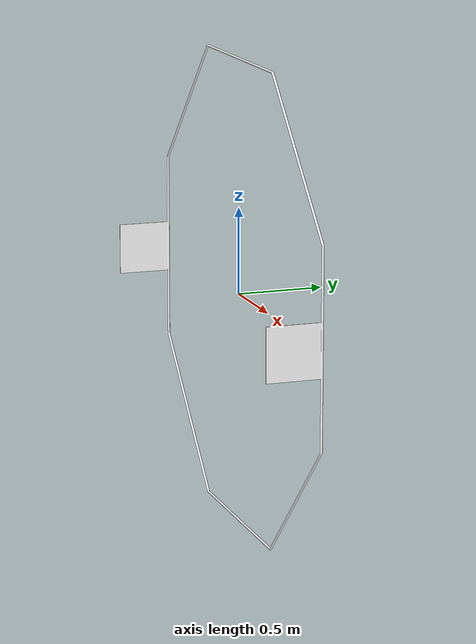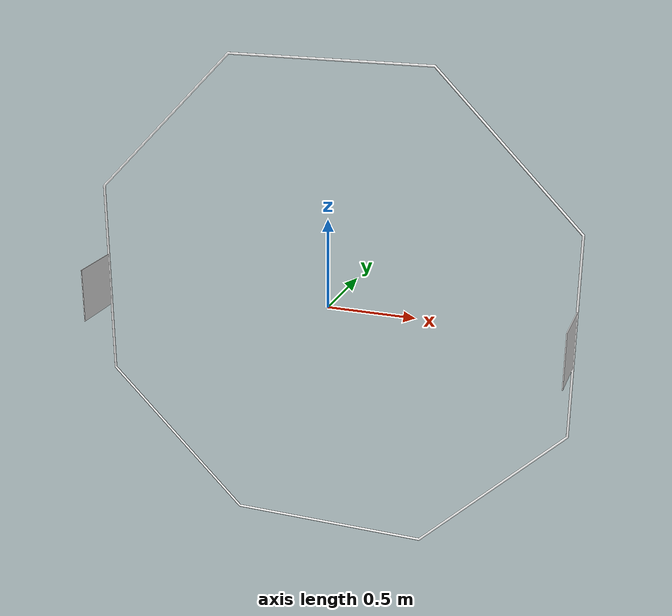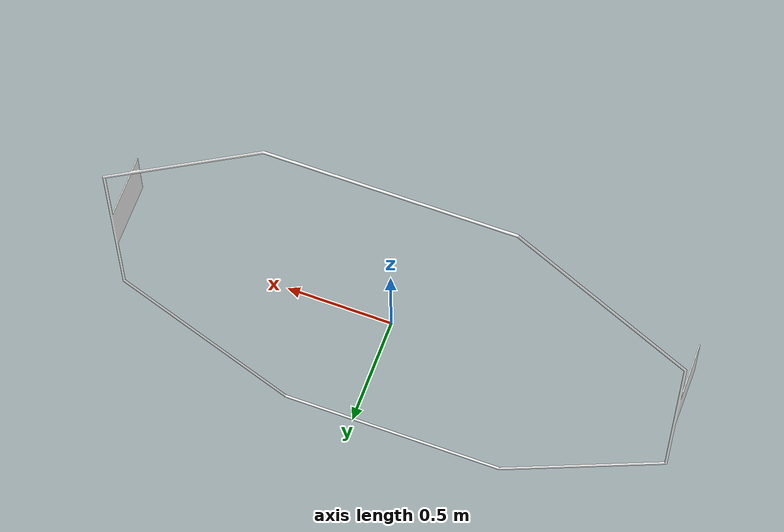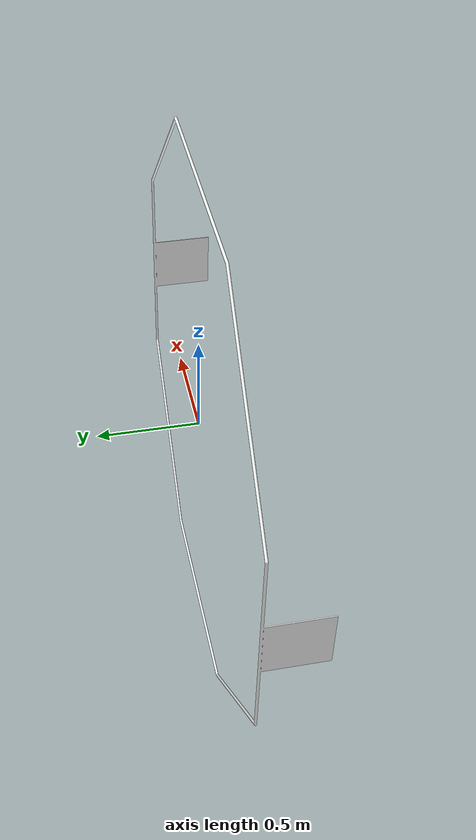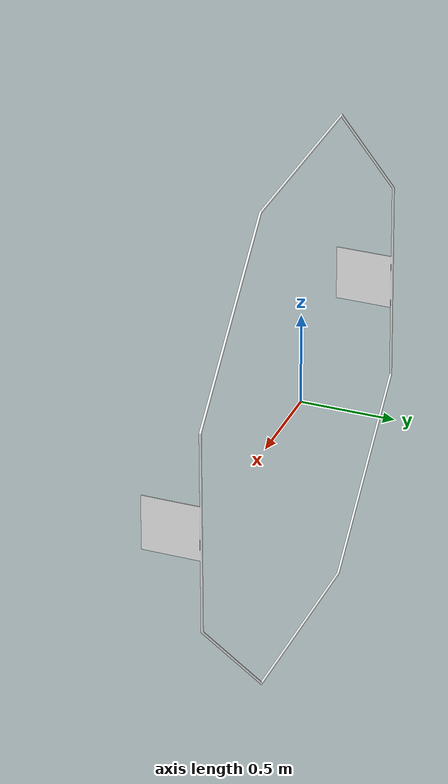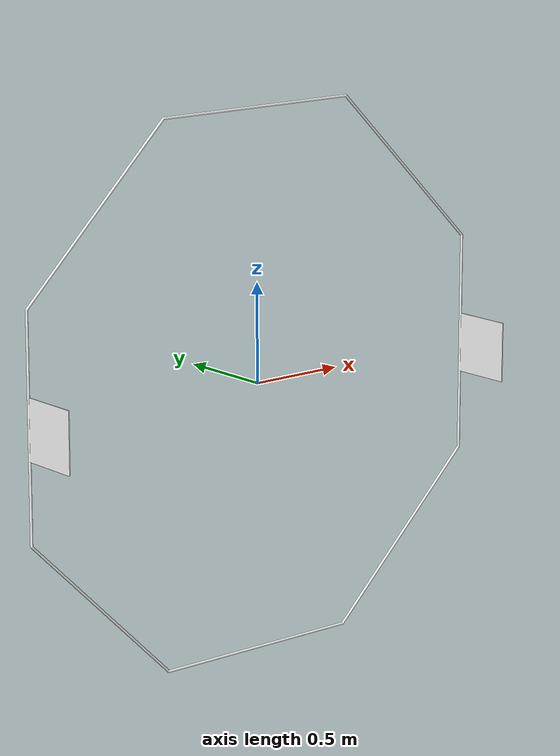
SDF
<?xml version="1.0" ?>
<sdf version="1.6">
  <model name="octagon">
    <static>true</static>
    <link name="link">
      <visual name="visual">
        <geometry>
          <mesh>
            <uri>model://ocean_cleanup_octagon/meshes/octagon.dae</uri>
          </mesh>
        </geometry>
      </visual>
      <collision name="collision">
        <geometry>
          <mesh>
            <uri>model://ocean_cleanup_octagon/meshes/octagon.dae</uri>
          </mesh>
        </geometry>
      </collision>
    </link>
  </model>
</sdf>
